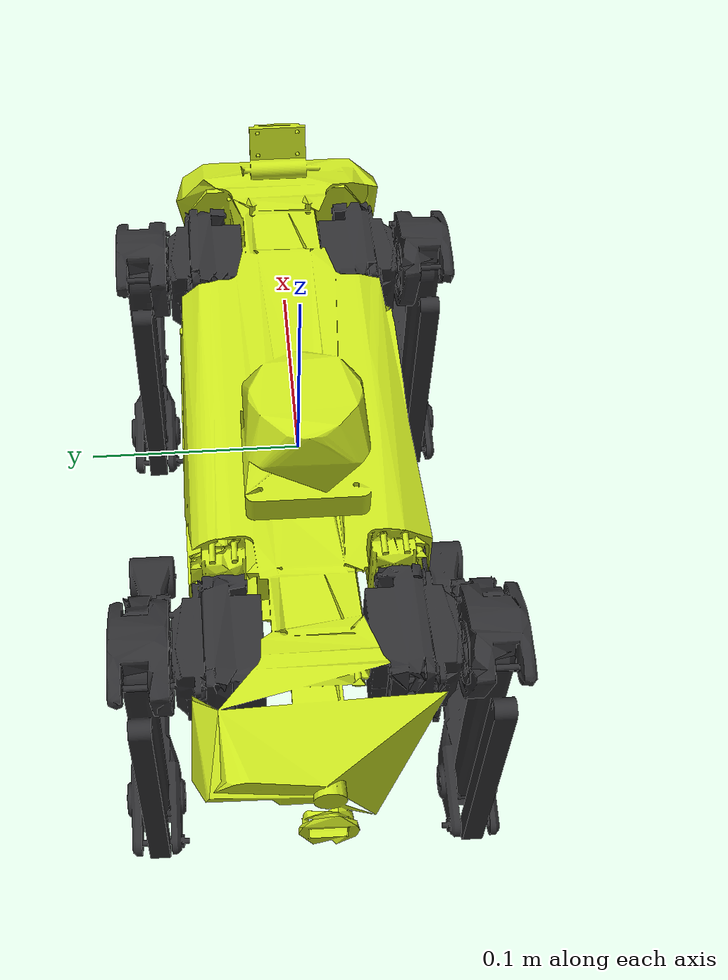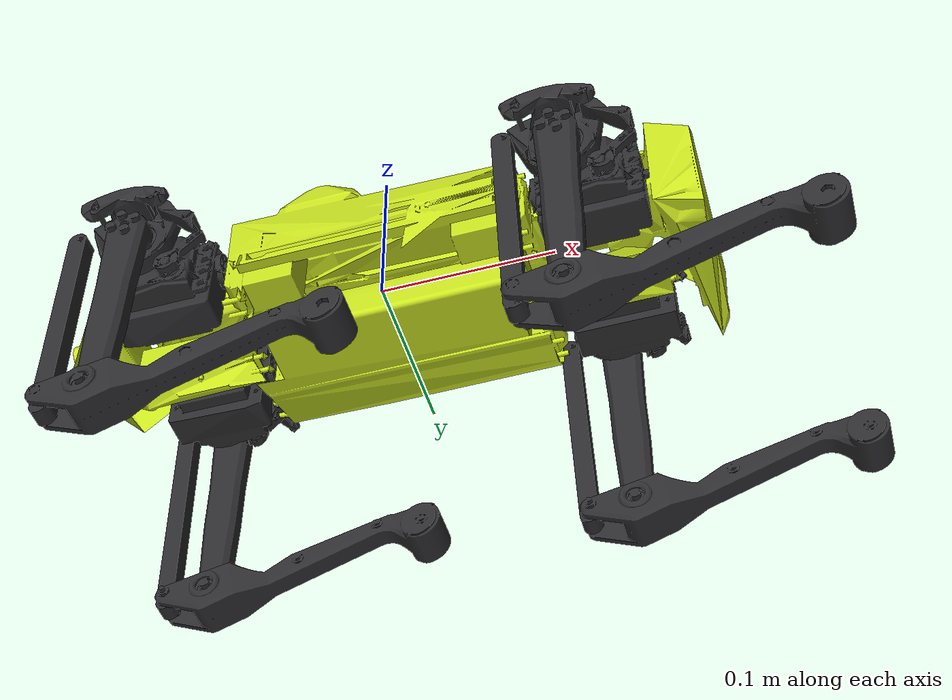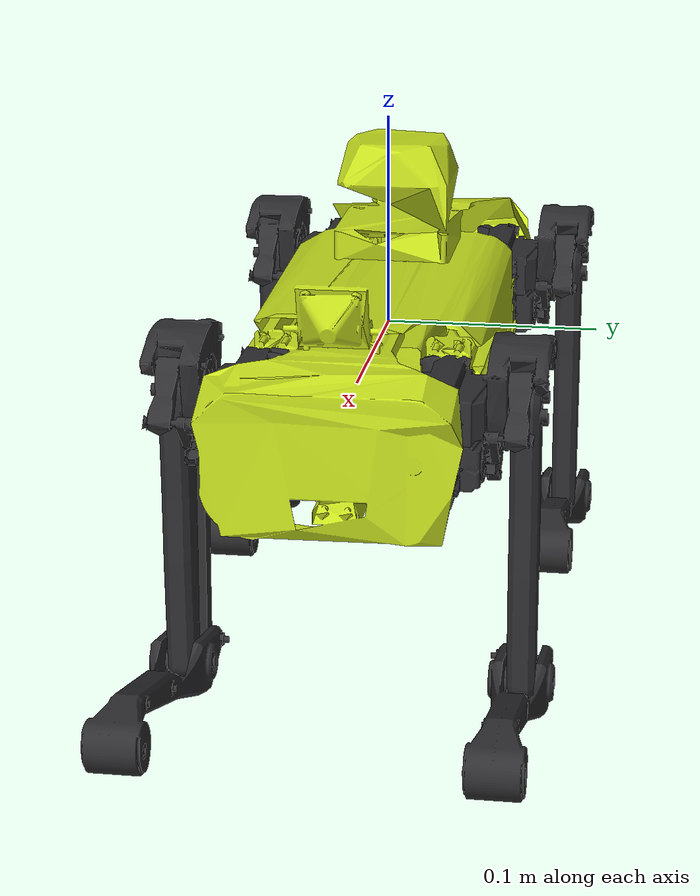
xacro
<?xml version="1.0"?>
<!-- GENERATED by strido_cad.models - do not edit. -->
<robot name="strido" xmlns:xacro="http://www.ros.org/wiki/xacro">
  <xacro:arg name="sim" default="false"/>
  <xacro:if value="$(arg sim)">
  <ros2_control name="strido" type="system">
    <hardware><plugin>gz_ros2_control/GazeboSimSystem</plugin></hardware>
    <joint name="FL_hip_joint">
      <command_interface name="position"/>
      <state_interface name="position"><param name="initial_value">0.0000</param></state_interface>
      <state_interface name="velocity"/>
    </joint>
    <joint name="FL_thigh_joint">
      <command_interface name="position"/>
      <state_interface name="position"><param name="initial_value">1.2110</param></state_interface>
      <state_interface name="velocity"/>
    </joint>
    <joint name="FL_calf_joint">
      <command_interface name="position"/>
      <state_interface name="position"><param name="initial_value">-2.5852</param></state_interface>
      <state_interface name="velocity"/>
    </joint>
    <joint name="FR_hip_joint">
      <command_interface name="position"/>
      <state_interface name="position"><param name="initial_value">-0.0000</param></state_interface>
      <state_interface name="velocity"/>
    </joint>
    <joint name="FR_thigh_joint">
      <command_interface name="position"/>
      <state_interface name="position"><param name="initial_value">1.2110</param></state_interface>
      <state_interface name="velocity"/>
    </joint>
    <joint name="FR_calf_joint">
      <command_interface name="position"/>
      <state_interface name="position"><param name="initial_value">-2.5852</param></state_interface>
      <state_interface name="velocity"/>
    </joint>
    <joint name="RL_hip_joint">
      <command_interface name="position"/>
      <state_interface name="position"><param name="initial_value">0.0000</param></state_interface>
      <state_interface name="velocity"/>
    </joint>
    <joint name="RL_thigh_joint">
      <command_interface name="position"/>
      <state_interface name="position"><param name="initial_value">1.2110</param></state_interface>
      <state_interface name="velocity"/>
    </joint>
    <joint name="RL_calf_joint">
      <command_interface name="position"/>
      <state_interface name="position"><param name="initial_value">-2.5852</param></state_interface>
      <state_interface name="velocity"/>
    </joint>
    <joint name="RR_hip_joint">
      <command_interface name="position"/>
      <state_interface name="position"><param name="initial_value">0.0000</param></state_interface>
      <state_interface name="velocity"/>
    </joint>
    <joint name="RR_thigh_joint">
      <command_interface name="position"/>
      <state_interface name="position"><param name="initial_value">1.2110</param></state_interface>
      <state_interface name="velocity"/>
    </joint>
    <joint name="RR_calf_joint">
      <command_interface name="position"/>
      <state_interface name="position"><param name="initial_value">-2.5852</param></state_interface>
      <state_interface name="velocity"/>
    </joint>
  </ros2_control>
  </xacro:if>
  <xacro:if value="$(arg sim)">
    <gazebo><plugin filename="gz_ros2_control-system" name="gz_ros2_control::GazeboSimROS2ControlPlugin"><parameters>$(find strido_description)/config/controllers.yaml</parameters></plugin></gazebo>
    <gazebo><plugin filename="gz-sim-odometry-publisher-system" name="gz::sim::systems::OdometryPublisher"><odom_frame>odom</odom_frame><robot_base_frame>base_link</robot_base_frame><odom_topic>ground_truth/odom</odom_topic><odom_publish_frequency>50</odom_publish_frequency><dimensions>3</dimensions></plugin></gazebo>
    <gazebo reference="imu_link"><sensor name="imu_sensor" type="imu"><always_on>1</always_on><update_rate>200</update_rate><topic>imu/data</topic><gz_frame_id>imu_link</gz_frame_id></sensor></gazebo>
    <gazebo reference="lidar_link"><sensor name="lidar" type="gpu_lidar"><update_rate>10</update_rate><topic>scan</topic><gz_frame_id>lidar_link</gz_frame_id><lidar><scan><horizontal><samples>360</samples><min_angle>-3.14159</min_angle><max_angle>3.14159</max_angle></horizontal></scan><range><min>0.05</min><max>12.0</max></range><noise><type>gaussian</type><mean>0</mean><stddev>0.01</stddev></noise></lidar><always_on>1</always_on></sensor></gazebo>
    <gazebo reference="camera_link"><sensor name="camera" type="camera"><update_rate>15</update_rate><topic>camera/image_raw</topic><gz_frame_id>camera_optical_frame</gz_frame_id><camera><horizontal_fov>1.78</horizontal_fov><image><width>640</width><height>360</height></image><clip><near>0.05</near><far>20</far></clip></camera><always_on>1</always_on></sensor></gazebo>
    <gazebo reference="FL_foot"><mu1>1.0</mu1><mu2>1.0</mu2><kp>100000</kp><kd>10</kd></gazebo>
    <gazebo reference="FR_foot"><mu1>1.0</mu1><mu2>1.0</mu2><kp>100000</kp><kd>10</kd></gazebo>
    <gazebo reference="RL_foot"><mu1>1.0</mu1><mu2>1.0</mu2><kp>100000</kp><kd>10</kd></gazebo>
    <gazebo reference="RR_foot"><mu1>1.0</mu1><mu2>1.0</mu2><kp>100000</kp><kd>10</kd></gazebo>
  </xacro:if>
  <material name="lime"><color rgba="0.78 0.88 0.12 1"/></material>
  <material name="graphite"><color rgba="0.18 0.18 0.19 1"/></material>
  <link name="base_link">
    <visual><geometry><mesh filename="package://strido_description/meshes/base_link.stl"/></geometry><material name="lime"/></visual>
    <collision><origin xyz="-0.000461314 1.9001e-05 0.000601007"/><geometry><box size="0.374091 0.114096 0.0995706"/></geometry></collision>
    <inertial>
      <origin xyz="0.00533714 0.000164431 -0.00651363" rpy="0 0 0"/>
      <mass value="1.70851"/>
      <inertia ixx="0.00261131" ixy="-8.21703e-07" ixz="0.000164474" iyy="0.0137536" iyz="1.70834e-05" izz="0.0137853"/>
    </inertial>
  </link>
  <link name="FL_hip">
    <visual><geometry><mesh filename="package://strido_description/meshes/FL_hip.stl"/></geometry><material name="graphite"/></visual>
    <inertial>
      <origin xyz="0.0082456 0.00976004 -0.00566959" rpy="0 0 0"/>
      <mass value="0.238911"/>
      <inertia ixx="7.15816e-05" ixy="4.56068e-06" ixz="6.63265e-06" iyy="6.67418e-05" iyz="-1.5388e-05" izz="6.32592e-05"/>
    </inertial>
  </link>
  <link name="FL_thigh">
    <visual><geometry><mesh filename="package://strido_description/meshes/FL_thigh.stl"/></geometry><material name="graphite"/></visual>
    <collision><origin xyz="0 0 -0.0649994"/><geometry><cylinder radius="0.011" length="0.129999"/></geometry></collision>
    <inertial>
      <origin xyz="-0.0082624 -0.00171585 -0.0468724" rpy="0 0 0"/>
      <mass value="0.0505958"/>
      <inertia ixx="0.000106437" ixy="1.40387e-07" ixz="-7.12122e-06" iyy="0.000114145" iyz="2.68886e-06" izz="1.04389e-05"/>
    </inertial>
  </link>
  <link name="FL_calf">
    <visual><geometry><mesh filename="package://strido_description/meshes/FL_calf.stl"/></geometry><material name="graphite"/></visual>
    <collision><origin xyz="0 0 -0.0620312"/><geometry><cylinder radius="0.009" length="0.0992499"/></geometry></collision>
    <inertial>
      <origin xyz="0.00157276 -0.00024066 -0.0483311" rpy="0 0 0"/>
      <mass value="0.0520587"/>
      <inertia ixx="0.000149829" ixy="2.85251e-08" ixz="4.86832e-06" iyy="0.000148958" iyz="-1.27588e-07" izz="4.84964e-06"/>
    </inertial>
  </link>
  <link name="FL_foot">
    <collision><geometry><sphere radius="0.0119802"/></geometry></collision>
    <inertial><mass value="0.001"/><inertia ixx="1e-8" ixy="0" ixz="0" iyy="1e-8" iyz="0" izz="1e-8"/></inertial>
  </link>
  <joint name="FL_hip_joint" type="revolute">
    <parent link="base_link"/><child link="FL_hip"/>
    <origin xyz="0.119673 0.039 0" rpy="0 0 0"/><axis xyz="1 0 0"/>
    <limit lower="-0.305433" upper="0.872665" effort="3.432" velocity="7.48"/>
    <dynamics damping="0.05" friction="0.02"/>
  </joint>
  <joint name="FL_thigh_joint" type="revolute">
    <parent link="FL_hip"/><child link="FL_thigh"/>
    <origin xyz="0 0.0382569 0" rpy="0 0 0"/><axis xyz="0 1 0"/>
    <limit lower="-0.698132" upper="2.18166" effort="3.432" velocity="7.48"/>
    <dynamics damping="0.05" friction="0.02"/>
  </joint>
  <joint name="FL_calf_joint" type="revolute">
    <parent link="FL_thigh"/><child link="FL_calf"/>
    <origin xyz="0 0 -0.129999" rpy="0 0 0"/><axis xyz="0 1 0"/>
    <limit lower="-2.61799" upper="-0.785398" effort="3.432" velocity="7.48"/>
    <dynamics damping="0.05" friction="0.02"/>
  </joint>
  <joint name="FL_foot_joint" type="fixed"><parent link="FL_calf"/><child link="FL_foot"/><origin xyz="0 0 -0.124062"/></joint>
  <link name="FR_hip">
    <visual><geometry><mesh filename="package://strido_description/meshes/FR_hip.stl"/></geometry><material name="graphite"/></visual>
    <inertial>
      <origin xyz="0.00824655 -0.00975914 -0.00566936" rpy="0 0 0"/>
      <mass value="0.238911"/>
      <inertia ixx="7.15862e-05" ixy="-4.55375e-06" ixz="6.62781e-06" iyy="6.67299e-05" iyz="1.53861e-05" izz="6.32633e-05"/>
    </inertial>
  </link>
  <link name="FR_thigh">
    <visual><geometry><mesh filename="package://strido_description/meshes/FR_thigh.stl"/></geometry><material name="graphite"/></visual>
    <collision><origin xyz="0 0 -0.0649994"/><geometry><cylinder radius="0.011" length="0.129999"/></geometry></collision>
    <inertial>
      <origin xyz="-0.00825812 0.00172085 -0.0468808" rpy="0 0 0"/>
      <mass value="0.0505958"/>
      <inertia ixx="0.00010642" ixy="-1.40979e-07" ixz="-7.10351e-06" iyy="0.000114131" iyz="-2.67864e-06" izz="1.04414e-05"/>
    </inertial>
  </link>
  <link name="FR_calf">
    <visual><geometry><mesh filename="package://strido_description/meshes/FR_calf.stl"/></geometry><material name="graphite"/></visual>
    <collision><origin xyz="0 0 -0.0620312"/><geometry><cylinder radius="0.009" length="0.0992499"/></geometry></collision>
    <inertial>
      <origin xyz="0.00157633 0.000227239 -0.0483187" rpy="0 0 0"/>
      <mass value="0.0520587"/>
      <inertia ixx="0.000149816" ixy="-2.51644e-08" ixz="4.8755e-06" iyy="0.000148944" iyz="9.5213e-08" izz="4.85095e-06"/>
    </inertial>
  </link>
  <link name="FR_foot">
    <collision><geometry><sphere radius="0.0119802"/></geometry></collision>
    <inertial><mass value="0.001"/><inertia ixx="1e-8" ixy="0" ixz="0" iyy="1e-8" iyz="0" izz="1e-8"/></inertial>
  </link>
  <joint name="FR_hip_joint" type="revolute">
    <parent link="base_link"/><child link="FR_hip"/>
    <origin xyz="0.119673 -0.039 0" rpy="0 0 0"/><axis xyz="1 0 0"/>
    <limit lower="-0.872665" upper="0.305433" effort="3.432" velocity="7.48"/>
    <dynamics damping="0.05" friction="0.02"/>
  </joint>
  <joint name="FR_thigh_joint" type="revolute">
    <parent link="FR_hip"/><child link="FR_thigh"/>
    <origin xyz="0 -0.0382569 0" rpy="0 0 0"/><axis xyz="0 1 0"/>
    <limit lower="-0.698132" upper="2.18166" effort="3.432" velocity="7.48"/>
    <dynamics damping="0.05" friction="0.02"/>
  </joint>
  <joint name="FR_calf_joint" type="revolute">
    <parent link="FR_thigh"/><child link="FR_calf"/>
    <origin xyz="0 0 -0.129999" rpy="0 0 0"/><axis xyz="0 1 0"/>
    <limit lower="-2.61799" upper="-0.785398" effort="3.432" velocity="7.48"/>
    <dynamics damping="0.05" friction="0.02"/>
  </joint>
  <joint name="FR_foot_joint" type="fixed"><parent link="FR_calf"/><child link="FR_foot"/><origin xyz="0 0 -0.124062"/></joint>
  <link name="RL_hip">
    <visual><geometry><mesh filename="package://strido_description/meshes/RL_hip.stl"/></geometry><material name="graphite"/></visual>
    <inertial>
      <origin xyz="0.00918348 0.0114594 -0.00569306" rpy="0 0 0"/>
      <mass value="0.238587"/>
      <inertia ixx="7.25942e-05" ixy="7.1069e-06" ixz="5.32866e-06" iyy="6.70418e-05" iyz="-1.54201e-05" izz="6.4687e-05"/>
    </inertial>
  </link>
  <link name="RL_thigh">
    <visual><geometry><mesh filename="package://strido_description/meshes/RL_thigh.stl"/></geometry><material name="graphite"/></visual>
    <collision><origin xyz="0 0 -0.0649994"/><geometry><cylinder radius="0.011" length="0.129999"/></geometry></collision>
    <inertial>
      <origin xyz="-0.00826352 -0.00171733 -0.0468694" rpy="0 0 0"/>
      <mass value="0.0505958"/>
      <inertia ixx="0.000106431" ixy="1.40602e-07" ixz="-7.12202e-06" iyy="0.000114138" iyz="2.68222e-06" izz="1.04375e-05"/>
    </inertial>
  </link>
  <link name="RL_calf">
    <visual><geometry><mesh filename="package://strido_description/meshes/RL_calf.stl"/></geometry><material name="graphite"/></visual>
    <collision><origin xyz="0 0 -0.0620312"/><geometry><cylinder radius="0.009" length="0.0992499"/></geometry></collision>
    <inertial>
      <origin xyz="0.00157345 -0.000240654 -0.0483317" rpy="0 0 0"/>
      <mass value="0.0520587"/>
      <inertia ixx="0.00014983" ixy="2.87292e-08" ixz="4.86705e-06" iyy="0.000148959" iyz="-1.28311e-07" izz="4.84913e-06"/>
    </inertial>
  </link>
  <link name="RL_foot">
    <collision><geometry><sphere radius="0.0119802"/></geometry></collision>
    <inertial><mass value="0.001"/><inertia ixx="1e-8" ixy="0" ixz="0" iyy="1e-8" iyz="0" izz="1e-8"/></inertial>
  </link>
  <joint name="RL_hip_joint" type="revolute">
    <parent link="base_link"/><child link="RL_hip"/>
    <origin xyz="-0.119673 0.039 -0" rpy="0 0 0"/><axis xyz="1 0 0"/>
    <limit lower="-0.305433" upper="0.785398" effort="3.432" velocity="7.48"/>
    <dynamics damping="0.05" friction="0.02"/>
  </joint>
  <joint name="RL_thigh_joint" type="revolute">
    <parent link="RL_hip"/><child link="RL_thigh"/>
    <origin xyz="0 0.04025 0" rpy="0 0 0"/><axis xyz="0 1 0"/>
    <limit lower="-0.261799" upper="2.18166" effort="3.432" velocity="7.48"/>
    <dynamics damping="0.05" friction="0.02"/>
  </joint>
  <joint name="RL_calf_joint" type="revolute">
    <parent link="RL_thigh"/><child link="RL_calf"/>
    <origin xyz="0 0 -0.129999" rpy="0 0 0"/><axis xyz="0 1 0"/>
    <limit lower="-2.61799" upper="-0.785398" effort="3.432" velocity="7.48"/>
    <dynamics damping="0.05" friction="0.02"/>
  </joint>
  <joint name="RL_foot_joint" type="fixed"><parent link="RL_calf"/><child link="RL_foot"/><origin xyz="0 0 -0.124062"/></joint>
  <link name="RR_hip">
    <visual><geometry><mesh filename="package://strido_description/meshes/RR_hip.stl"/></geometry><material name="graphite"/></visual>
    <inertial>
      <origin xyz="0.00918413 -0.0114616 -0.00569384" rpy="0 0 0"/>
      <mass value="0.238587"/>
      <inertia ixx="7.2594e-05" ixy="-7.10406e-06" ixz="5.33127e-06" iyy="6.70427e-05" iyz="1.54244e-05" izz="6.46792e-05"/>
    </inertial>
  </link>
  <link name="RR_thigh">
    <visual><geometry><mesh filename="package://strido_description/meshes/RR_thigh.stl"/></geometry><material name="graphite"/></visual>
    <collision><origin xyz="0 0 -0.0649994"/><geometry><cylinder radius="0.011" length="0.129999"/></geometry></collision>
    <inertial>
      <origin xyz="-0.00825819 0.00172099 -0.0468808" rpy="0 0 0"/>
      <mass value="0.0505958"/>
      <inertia ixx="0.00010642" ixy="-1.40876e-07" ixz="-7.10365e-06" iyy="0.000114131" iyz="-2.67849e-06" izz="1.04413e-05"/>
    </inertial>
  </link>
  <link name="RR_calf">
    <visual><geometry><mesh filename="package://strido_description/meshes/RR_calf.stl"/></geometry><material name="graphite"/></visual>
    <collision><origin xyz="0 0 -0.0620312"/><geometry><cylinder radius="0.009" length="0.0992499"/></geometry></collision>
    <inertial>
      <origin xyz="0.00157756 0.000225557 -0.0483289" rpy="0 0 0"/>
      <mass value="0.0520587"/>
      <inertia ixx="0.000149829" ixy="-2.48455e-08" ixz="4.87482e-06" iyy="0.000148956" iyz="8.77435e-08" izz="4.85192e-06"/>
    </inertial>
  </link>
  <link name="RR_foot">
    <collision><geometry><sphere radius="0.0119802"/></geometry></collision>
    <inertial><mass value="0.001"/><inertia ixx="1e-8" ixy="0" ixz="0" iyy="1e-8" iyz="0" izz="1e-8"/></inertial>
  </link>
  <joint name="RR_hip_joint" type="revolute">
    <parent link="base_link"/><child link="RR_hip"/>
    <origin xyz="-0.119673 -0.039 -0" rpy="0 0 0"/><axis xyz="1 0 0"/>
    <limit lower="-0.785398" upper="0.305433" effort="3.432" velocity="7.48"/>
    <dynamics damping="0.05" friction="0.02"/>
  </joint>
  <joint name="RR_thigh_joint" type="revolute">
    <parent link="RR_hip"/><child link="RR_thigh"/>
    <origin xyz="0 -0.04025 0" rpy="0 0 0"/><axis xyz="0 1 0"/>
    <limit lower="-0.261799" upper="2.18166" effort="3.432" velocity="7.48"/>
    <dynamics damping="0.05" friction="0.02"/>
  </joint>
  <joint name="RR_calf_joint" type="revolute">
    <parent link="RR_thigh"/><child link="RR_calf"/>
    <origin xyz="0 0 -0.129999" rpy="0 0 0"/><axis xyz="0 1 0"/>
    <limit lower="-2.61799" upper="-0.785398" effort="3.432" velocity="7.48"/>
    <dynamics damping="0.05" friction="0.02"/>
  </joint>
  <joint name="RR_foot_joint" type="fixed"><parent link="RR_calf"/><child link="RR_foot"/><origin xyz="0 0 -0.124062"/></joint>
  <link name="imu_link"/>
  <joint name="imu_link_joint" type="fixed"><parent link="base_link"/><child link="imu_link"/><origin xyz="0.041953 -0.0043 -0.0110833" rpy="0 0 0"/></joint>
  <link name="lidar_link"/>
  <joint name="lidar_link_joint" type="fixed"><parent link="base_link"/><child link="lidar_link"/><origin xyz="-0.034157 0 0.0716167" rpy="0 0 0"/></joint>
  <link name="camera_link"/>
  <joint name="camera_link_joint" type="fixed"><parent link="base_link"/><child link="camera_link"/><origin xyz="0.174153 0 0.0488167" rpy="0 0.261799 0"/></joint>
  <link name="camera_optical_frame"/>
  <joint name="camera_optical_joint" type="fixed"><parent link="camera_link"/><child link="camera_optical_frame"/><origin xyz="0 0 0" rpy="-1.5707963 0 -1.5707963"/></joint>
</robot>
